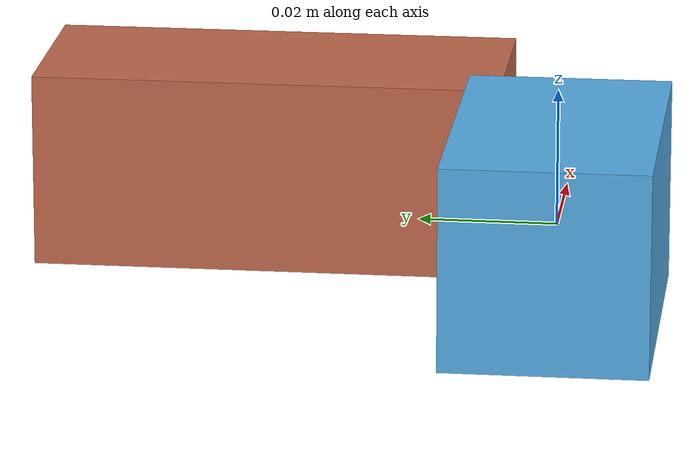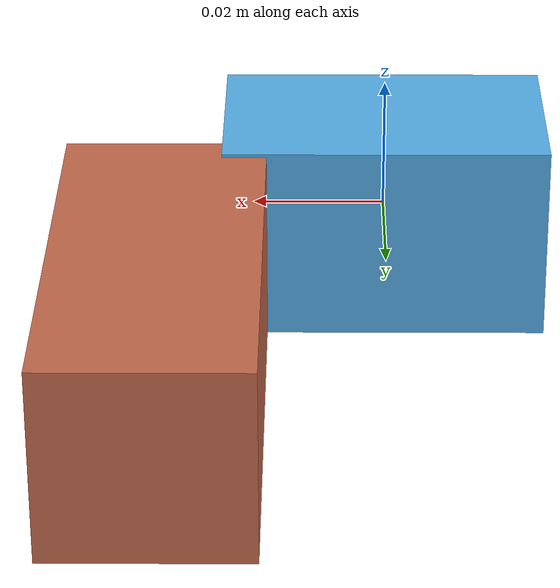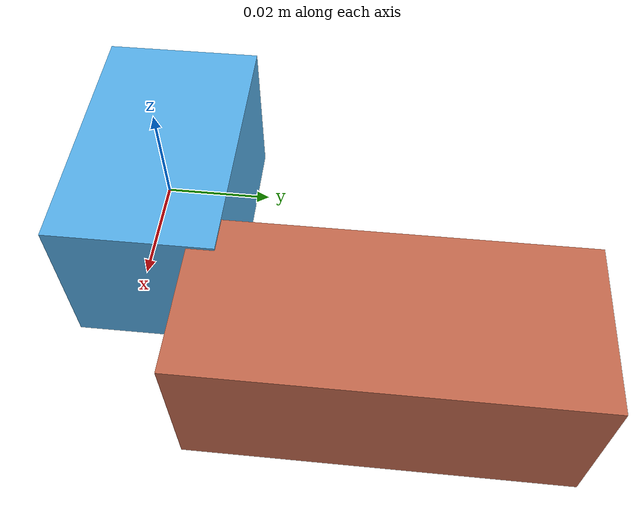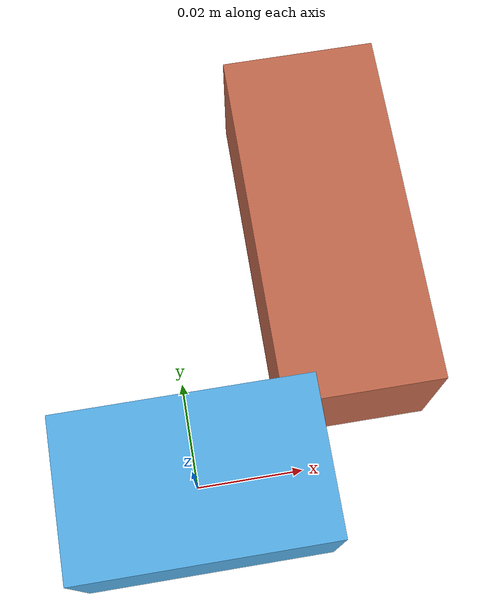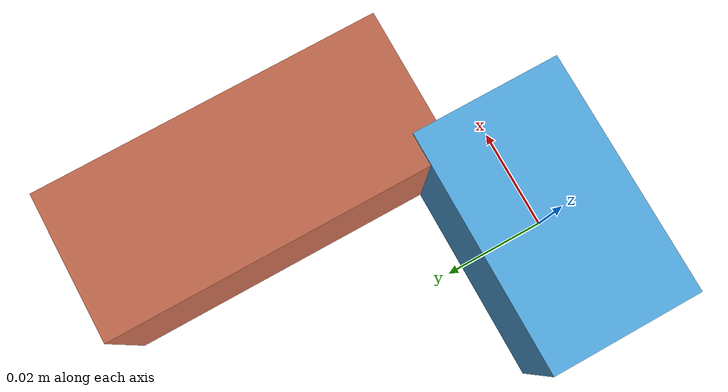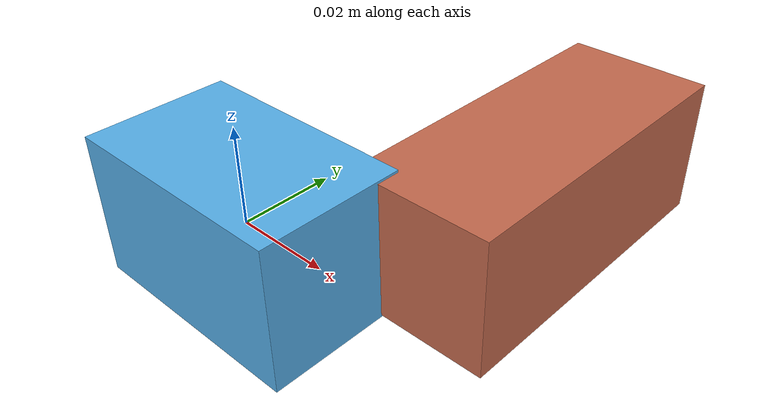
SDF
<sdf version="1.4"><world name="default"><model name="object0"><link name="link1"><pose>0 0 0 0 0 0</pose><inertial><pose>0 0 0 0 0 0</pose><mass>0.026411024228174873</mass><inertia><ixx>3.9616536342262305e-06</ixx><ixy>0</ixy><iyy>7.245688489783371e-06</iyy><ixz>0</ixz><iyz>0</iyz><izz>7.245688489783371e-06</izz></inertia></inertial><visual name="link1_visual"><pose>0 0  0 0 0 0</pose><geometry><box><size>0.04890930412624977 0.03 0.03</size></box></geometry><material><diffuse>0.33580252207044264 0.6882993989291628 0.914751793974943 1</diffuse></material></visual><collision><pose>0 0  0 0 0 0</pose><geometry><box><size>0.04890930412624977 0.03 0.03</size></box></geometry></collision></link><link name="link2"><pose>0.032807380916444084 0.04491180189670642 0 0 0 0</pose><inertial><pose>0 0 0 0 0 0</pose><mass>0.037634911291771246</mass><inertia><ixx>1.787122832022895e-05</ixx><ixy>0</ixy><iyy>5.460198379914478e-06</iyy><ixz>0</ixz><iyz>0</iyz><izz>1.805626663408016e-05</izz></inertia></inertial><visual name="link2_visual"><pose>0 0  0 0 0 0</pose><geometry><box><size>0.03 0.06969428016994676 0.028999999999999998</size></box></geometry><material><diffuse>0.7716121714257573 0.4149289849785863 0.3048982215460783 1</diffuse></material></visual><collision><pose>0 0  0 0 0 0</pose><geometry><box><size>0.03 0.06969428016994676 0.028999999999999998</size></box></geometry></collision></link><joint name="link_joint_0" type="fixed"><parent>link1</parent><child>link2</child><pose>0 0 0 0 0 0</pose><axis><xyz>0 0 1</xyz></axis></joint></model></world></sdf>
